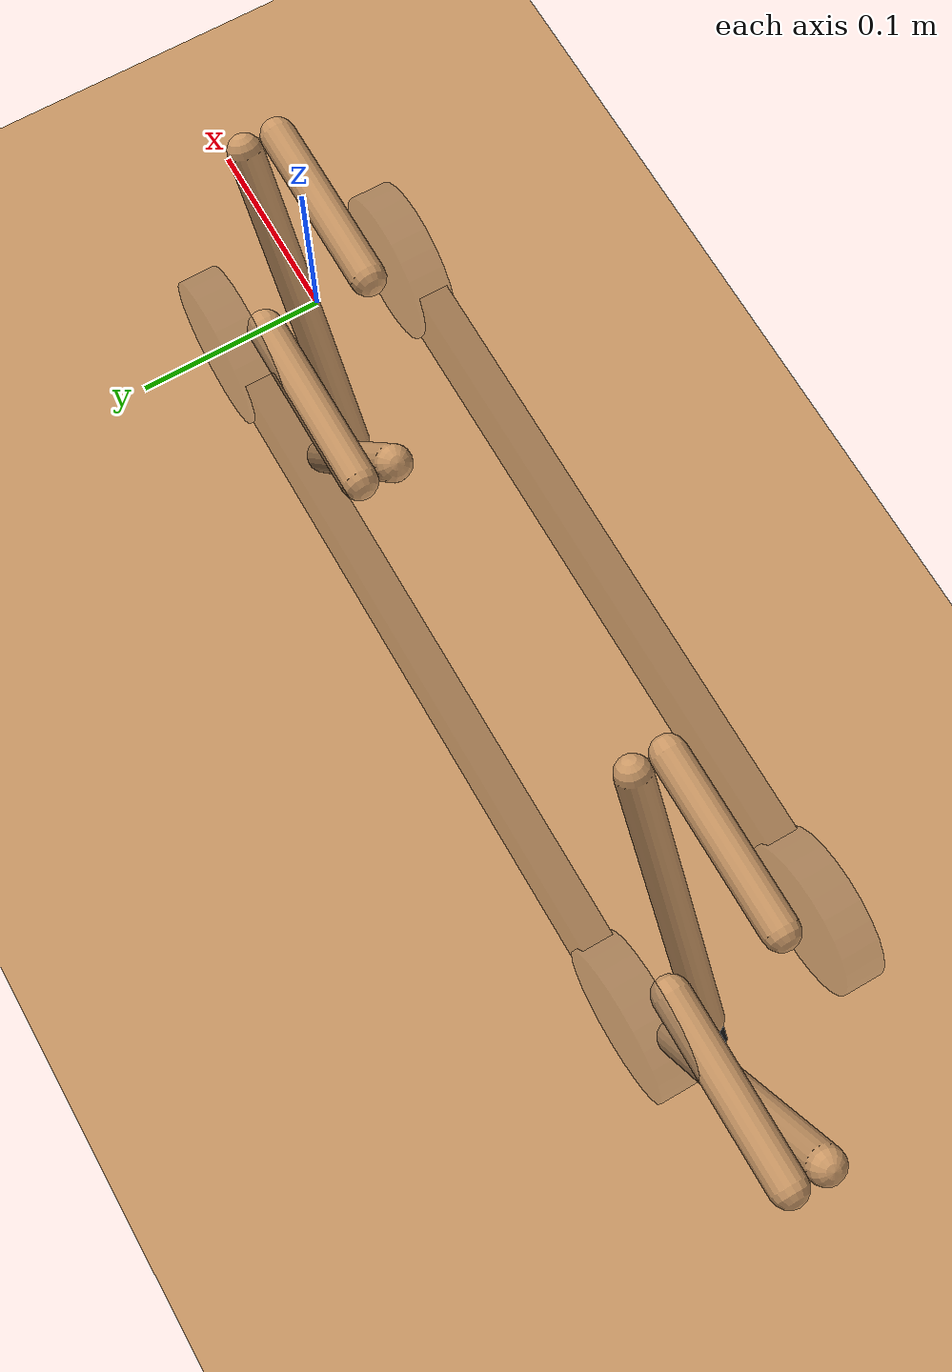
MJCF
<mujoco model="snapper_2d">
	<compiler coordinate="global"/>

	<default>
		<geom rgba=".8 .6 .4 1"/>
	</default>

	<asset>
		<texture type="skybox" builtin="gradient" rgb1="1 1 1" rgb2=".6 .8 1" width="256" height="256"/>
	</asset>

	<worldbody>
		<body>
			<light pos="0 1 1" dir="0 -1 -1" diffuse="1 1 1"/>
			<geom type="box" pos="-0.2 -0.05 0" size="0.2 0.008 0.02" rgba="0 0 0  0.2" />
			<geom type="box" pos="-0.2  0.05 0" size="0.2 0.008 0.02" rgba="0 0 0  0.2" />
			<joint type="slide" axis="0 0 1" />
			<joint type="slide" axis="1 0 1" />

			<body>
				<!--- Geometry for motors (1) --->
				<geom type="cylinder" fromto="0  0.04 0 0  0.06 0" size="0.04" rgba="0.2 0.2 0.2 0.2" />
				<geom type="cylinder" fromto="0 -0.04 0 0 -0.06 0" size="0.04" rgba="0.2 0.2 0.2 0.2" />

				<!---- Defines the leg a (hip, femur, knee, tibia) ---->
				<body name="leg_1a">
					<geom  name="femur_1a" type="capsule" fromto="0 -0.03 0  0.1 -0.03 0" size="0.01"/>
					<joint name="hip_1a" type="hinge" pos="0 -0.04 0" axis="0 1 0"/>

					<body name="tibia_1a">
						<geom type="capsule" fromto="0.1 -0.01 0   0 -0.01 -0.1732" size="0.01" />
						<joint name="knee_1a" type="hinge" pos="0.1 -0.02 0" axis="0 1 0"/>

						<body>
							<geom name="foot_1" type="capsule" fromto="0 -0.01 -0.1732  -0.01 -0.01 -0.19052" size="0.008"  rgba="0.1 0.1 0.1 1"/>
						</body>
					</body>
				</body>

				<!---- Defines the leg b (hip, femur, knee, tibia) ---->
				<body name="leg_1b">
					<geom  name="femur_1b" type="capsule" fromto="0 0.03 0 -0.1 0.03 0" size="0.01"/>
					<joint name="hip_1b"   type="hinge" pos="0 0.04 0" axis="0 1 0"/>

					<body name="tibia_1b">
						<geom type="capsule" fromto="-0.1 0.01 0 0 0.01 -0.1732" size="0.01"/>
						<joint name="knee_1b"  type="hinge" pos="-0.1 0.02 0" axis="0 1 0"/>
					</body>
				</body>
			</body>

			<body>
				<!--- Geometry for motors (2) --->
				<geom type="cylinder" fromto="-0.4 0.04 0 -0.4 0.06 0" size="0.04" rgba="0.2 0.2 0.2 0.2" />
				<geom type="cylinder" fromto="-0.4 -0.04 0 -0.4 -0.06 0" size="0.04" rgba="0.2 0.2 0.2 0.2" />

				<!---- Defines the leg a (hip, femur, knee, tibia) ---->
				<body name="leg_2a">
					<geom  name="femur_2a" type="capsule" fromto="-0.4 -0.03 0  -0.3 -0.03 0" size="0.01"/>
					<joint name="hip_2a" type="hinge" pos="-0.4 -0.04 0" axis="0 1 0"/>

					<body name="tibia_2a">
						<geom type="capsule" fromto="-0.3 -0.01 0   -0.4 -0.01 -0.1732" size="0.01" />
						<joint name="knee_2a" type="hinge" pos="-0.3 -0.02 0" axis="0 1 0"/>

						<body>
							<geom name="foot_2" type="capsule" fromto="-0.4 -0.01 -0.1732  -0.41 -0.01 -0.19052" size="0.008"  rgba="0.1 0.1 0.1 1"/>
						</body>
					</body>
				</body>

				<!---- Defines the leg b (hip, femur, knee, tibia) ---->
				<body name="leg_2b">
					<geom  name="femur_2b" type="capsule" fromto="-0.4 0.03 0 -0.5 0.03 0" size="0.01"/>
					<joint name="hip_2b"   type="hinge" pos="-0.4 0.02 0" axis="0 1 0"/>

					<body name="tibia_2b">
						<geom type="capsule" fromto="-0.5 0.01 0 -0.4 0.01 -0.1732" size="0.01"/>
						<joint name="knee_2b"  type="hinge" pos="-0.5 0.01 0" axis="0 1 0"/>
					</body>
				</body>
			</body>
		</body>
		<geom type="plane" pos="0 0 -0.2"  size="1 1 0.1"/>
	</worldbody>

	<equality>
		<connect body1="tibia_1a" body2="tibia_1b" anchor="0 0 -0.1732" />
		<connect body1="tibia_2a" body2="tibia_2b" anchor="-0.4 0 -0.1732" />
	</equality>

	<actuator>
		<position name="u1" kp="5" joint="hip_1a" />
		<velocity name="u2" kv="0.1" joint="hip_1a" />

		<position name="u3" kp="5" joint="hip_1b" />
		<velocity name="u4" kv="0.1" joint="hip_1b" />

		<position name="u5" kp="5" joint="hip_2a" />
		<velocity name="u6" kv="0.1" joint="hip_2a" />

		<position name="u7" kp="5" joint="hip_2b" />
		<velocity name="u8" kv="0.1" joint="hip_2b" />
	</actuator>

</mujoco>
